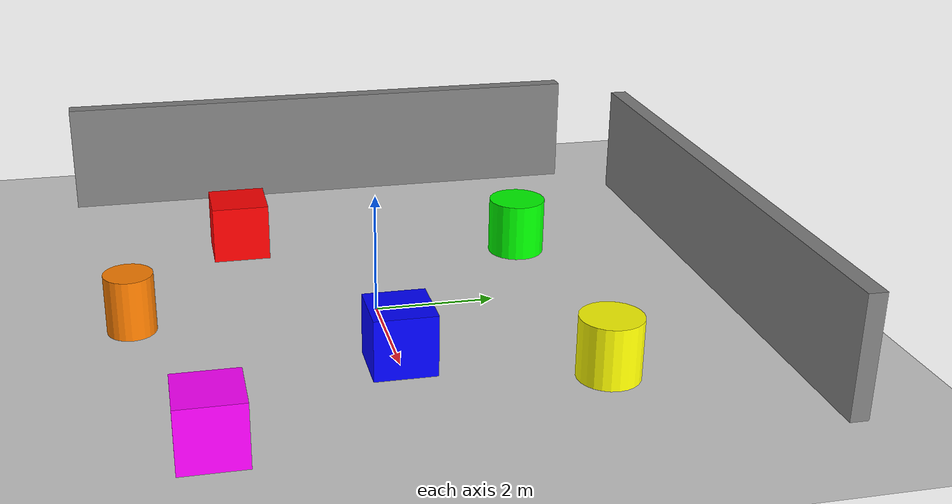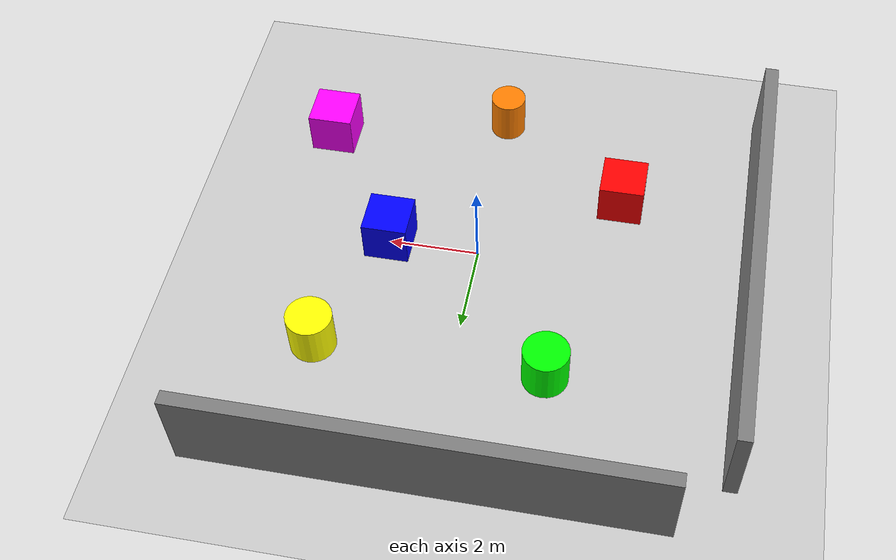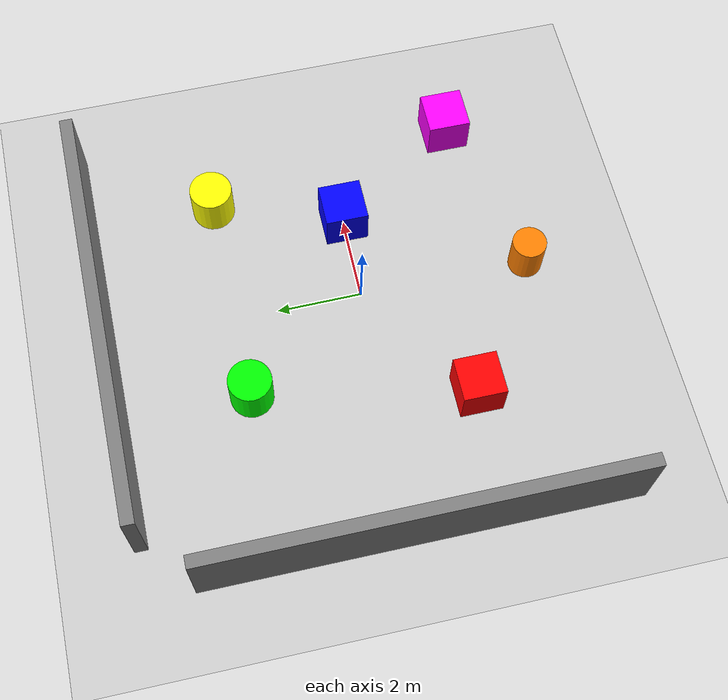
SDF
<?xml version="1.0"?>
<sdf version="1.9">

  <world name="simple_world">

    <plugin filename="gz-sim-physics-system" name="gz::sim::systems::Physics"/>
    <plugin filename="gz-sim-scene-broadcaster-system" name="gz::sim::systems::SceneBroadcaster"/>
    <plugin filename="gz-sim-user-commands-system" name="gz::sim::systems::UserCommands"/>
    <plugin filename="gz-sim-sensors-system" name="gz::sim::systems::Sensors"/>

    <!-- Sun -->
    <light name="sun" type="directional">
      <cast_shadows>true</cast_shadows>
      <pose>0 0 20 0 0 0</pose>
      <diffuse>1 1 1 1</diffuse>
      <specular>0.2 0.2 0.2 1</specular>
      <direction>-0.5 0.1 -0.9</direction>
    </light>

    <!-- Ground -->
    <model name="ground_plane">
      <static>true</static>

      <link name="ground_link">

        <collision name="collision">
          <geometry>
            <plane>
              <normal>0 0 1</normal>
              <size>100 100</size>
            </plane>
          </geometry>
        </collision>

        <visual name="visual">
          <geometry>
            <plane>
              <normal>0 0 1</normal>
              <size>100 100</size>
            </plane>
          </geometry>

          <material>
            <ambient>0.8 0.8 0.8 1</ambient>
            <diffuse>0.8 0.8 0.8 1</diffuse>
          </material>

        </visual>

      </link>

    </model>

    <!-- BOX 1 -->
    <model name="box1">
      <static>true</static>
      <pose>2 0 0.5 0 0 0</pose>

      <link name="link">

        <collision name="collision">
          <geometry>
            <box>
              <size>1 1 1</size>
            </box>
          </geometry>
        </collision>

        <visual name="visual">
          <geometry>
            <box>
              <size>1 1 1</size>
            </box>
          </geometry>

          <material>
            <ambient>0 0 1 1</ambient>
            <diffuse>0 0 1 1</diffuse>
          </material>

        </visual>

      </link>

    </model>

    <!-- BOX 2 -->
    <model name="box2">
      <static>true</static>
      <pose>-3 -2 0.5 0 0 0</pose>

      <link name="link">

        <collision name="collision">
          <geometry>
            <box>
              <size>1 1 1</size>
            </box>
          </geometry>
        </collision>

        <visual name="visual">
          <geometry>
            <box>
              <size>1 1 1</size>
            </box>
          </geometry>

          <material>
            <ambient>1 0 0 1</ambient>
            <diffuse>1 0 0 1</diffuse>
          </material>

        </visual>

      </link>

    </model>

    <!-- BOX 3 -->
    <model name="box3">
      <static>true</static>
      <pose>4 -3 0.5 0 0 0</pose>

      <link name="link">

        <collision name="collision">
          <geometry>
            <box>
              <size>1 1 1</size>
            </box>
          </geometry>
        </collision>

        <visual name="visual">
          <geometry>
            <box>
              <size>1 1 1</size>
            </box>
          </geometry>

          <material>
            <ambient>1 0 1 1</ambient>
            <diffuse>1 0 1 1</diffuse>
          </material>

        </visual>

      </link>

    </model>

    <!-- CYLINDER 1 -->
    <model name="cylinder1">
      <static>true</static>
      <pose>-2 3 0.5 0 0 0</pose>

      <link name="link">

        <collision name="collision">
          <geometry>
            <cylinder>
              <radius>0.5</radius>
              <length>1.0</length>
            </cylinder>
          </geometry>
        </collision>

        <visual name="visual">
          <geometry>
            <cylinder>
              <radius>0.5</radius>
              <length>1.0</length>
            </cylinder>
          </geometry>

          <material>
            <ambient>0 1 0 1</ambient>
            <diffuse>0 1 0 1</diffuse>
          </material>

        </visual>

      </link>

    </model>

    <!-- CYLINDER 2 -->
    <model name="cylinder2">
      <static>true</static>
      <pose>3 3 0.5 0 0 0</pose>

      <link name="link">

        <collision name="collision">
          <geometry>
            <cylinder>
              <radius>0.5</radius>
              <length>1.0</length>
            </cylinder>
          </geometry>
        </collision>

        <visual name="visual">
          <geometry>
            <cylinder>
              <radius>0.5</radius>
              <length>1.0</length>
            </cylinder>
          </geometry>

          <material>
            <ambient>1 1 0 1</ambient>
            <diffuse>1 1 0 1</diffuse>
          </material>

        </visual>

      </link>

    </model>

    <!-- CYLINDER 3 -->
    <model name="cylinder3">
      <static>true</static>
      <pose>0 -4 0.5 0 0 0</pose>

      <link name="link">

        <collision name="collision">
          <geometry>
            <cylinder>
              <radius>0.4</radius>
              <length>1.0</length>
            </cylinder>
          </geometry>
        </collision>

        <visual name="visual">
          <geometry>
            <cylinder>
              <radius>0.4</radius>
              <length>1.0</length>
            </cylinder>
          </geometry>

          <material>
            <ambient>1 0.5 0 1</ambient>
            <diffuse>1 0.5 0 1</diffuse>
          </material>

        </visual>

      </link>

    </model>

    <!-- WALL 1 -->
    <model name="wall1">
      <static>true</static>
      <pose>0 6 1 0 0 0</pose>

      <link name="link">

        <collision name="collision">
          <geometry>
            <box>
              <size>10 0.3 2</size>
            </box>
          </geometry>
        </collision>

        <visual name="visual">
          <geometry>
            <box>
              <size>10 0.3 2</size>
            </box>
          </geometry>

          <material>
            <ambient>0.5 0.5 0.5 1</ambient>
            <diffuse>0.5 0.5 0.5 1</diffuse>
          </material>

        </visual>

      </link>

    </model>

    <!-- WALL 2 -->
    <model name="wall2">
      <static>true</static>
      <pose>-6 0 1 0 0 1.5708</pose>

      <link name="link">

        <collision name="collision">
          <geometry>
            <box>
              <size>10 0.3 2</size>
            </box>
          </geometry>
        </collision>

        <visual name="visual">
          <geometry>
            <box>
              <size>10 0.3 2</size>
            </box>
          </geometry>

          <material>
            <ambient>0.5 0.5 0.5 1</ambient>
            <diffuse>0.5 0.5 0.5 1</diffuse>
          </material>

        </visual>

      </link>

    </model>

  </world>

</sdf>
